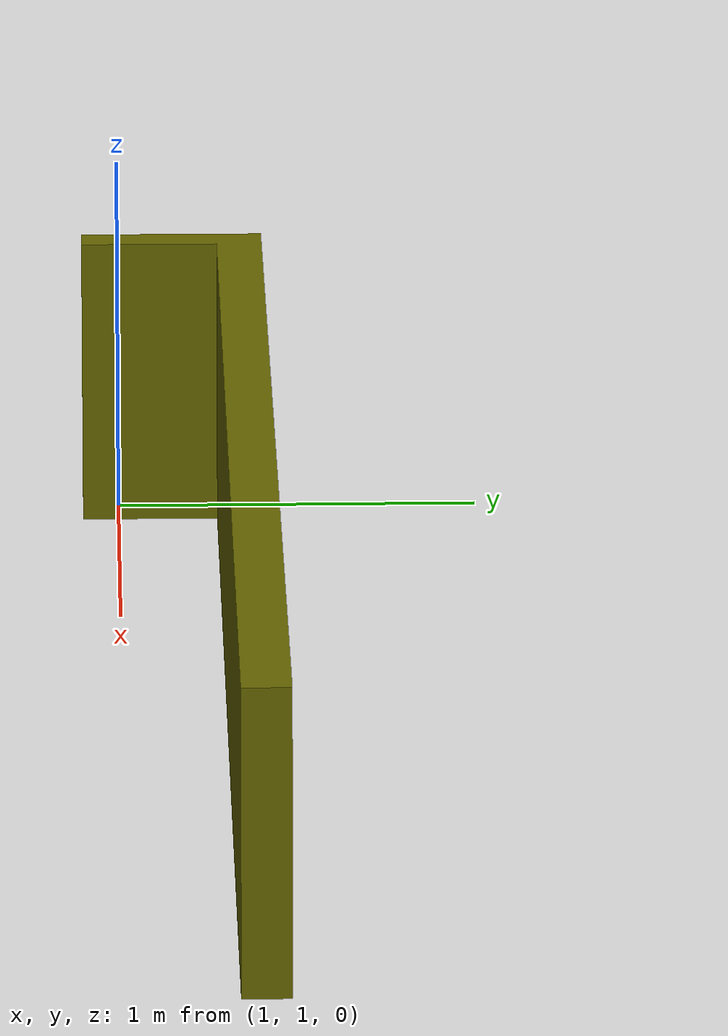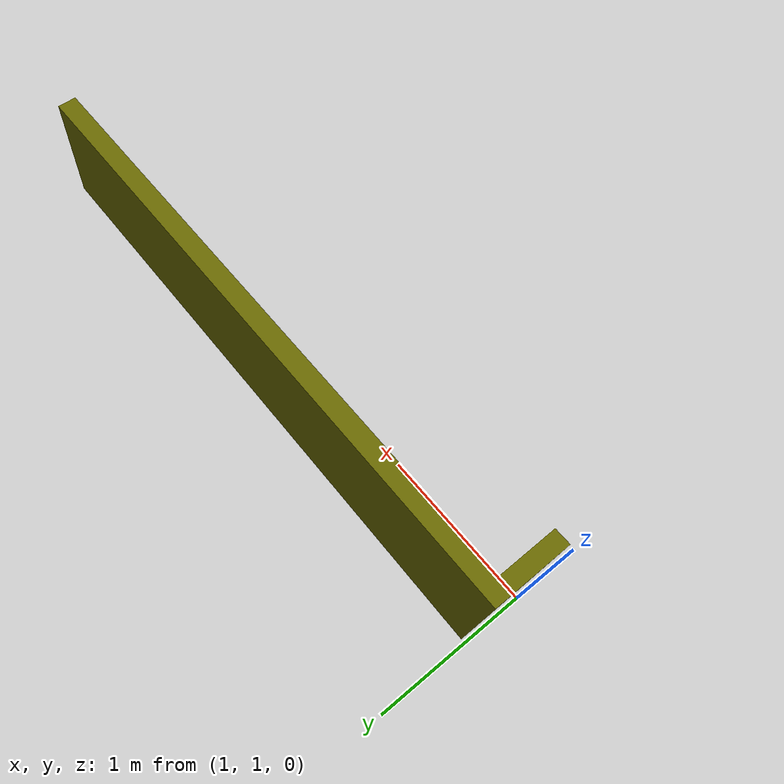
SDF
<?xml version="1.0"?>
<sdf version="1.6">
  <model name="cover/walls">
    <link name="1_link">
      <collision name="1_col">
        <geometry>
          <mesh>
            <uri>model://cover/walls/covered.stl</uri>
          </mesh>
        </geometry>
      </collision>
      <visual name="1_vis">
        <geometry>
          <mesh>
            <uri>model://cover/walls/covered.stl</uri>
          </mesh>
        </geometry>
        <material>
          <ambient>0.4 0.4 0.0 1</ambient>
        </material>
      </visual>
      <pose>0 0 0 0 0 0</pose>
    </link>
    <static>true</static>
  </model>
</sdf>
